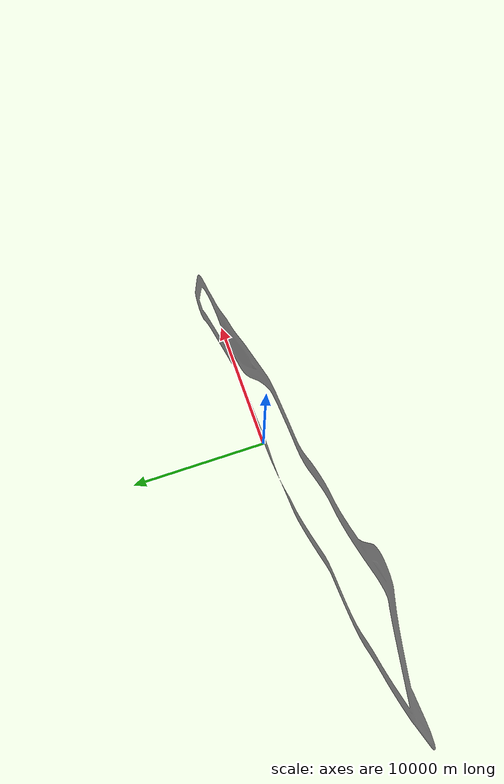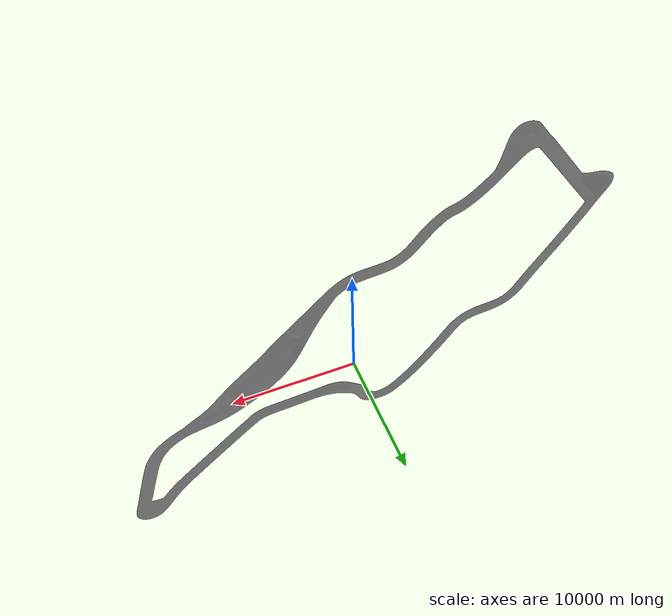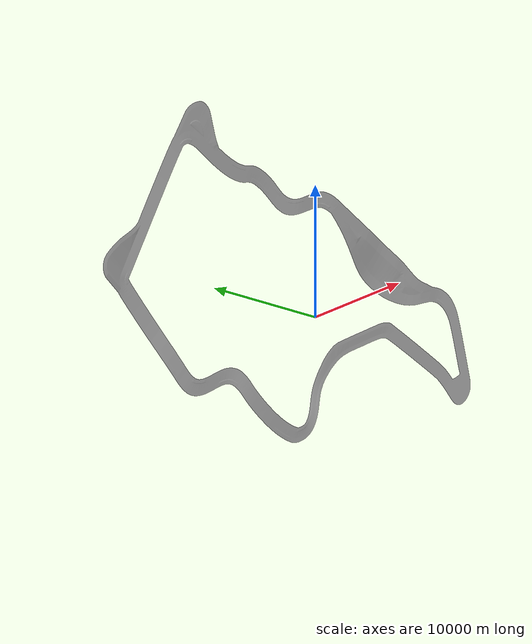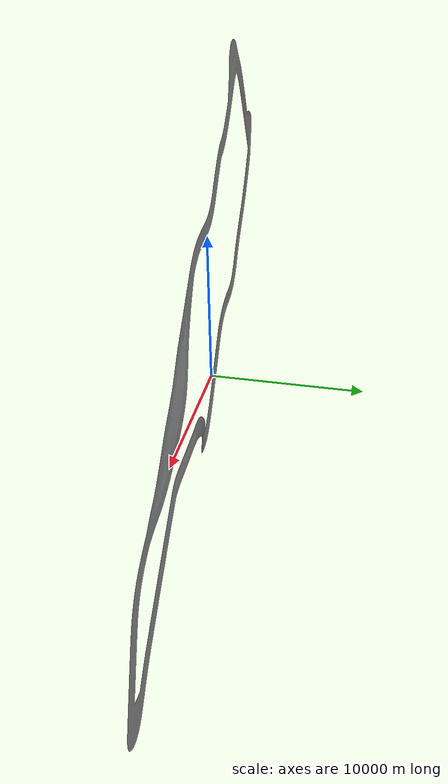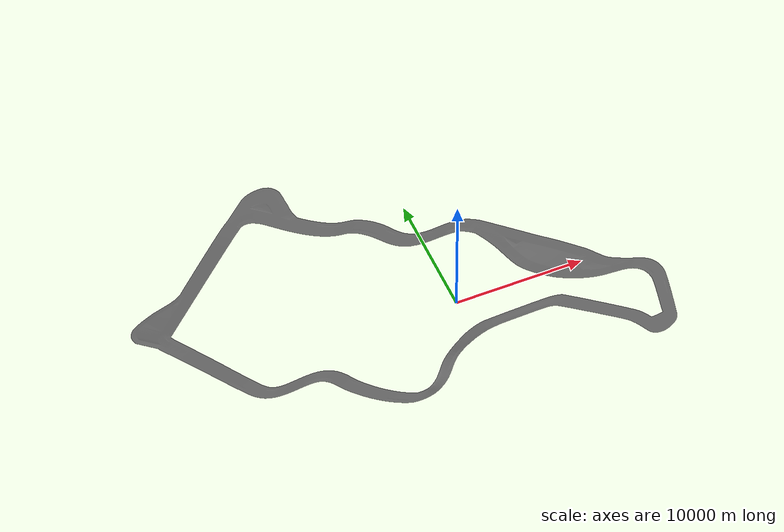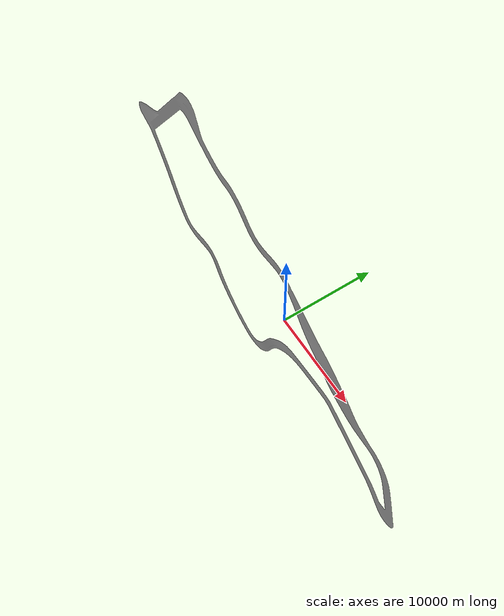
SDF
<sdf version="1.7">
 <world name="default">
  <light name="sun" type="directional">
   <pose>0 0 10 0 -0 0</pose>
   <diffuse>1.0 1.0 1.0 1.0</diffuse>
   <specular>0.2 0.2 0.2 1</specular>
   <attenuation>
    <range>10000000</range>
    <constant>0.9</constant>
    <linear>0.01</linear>
    <quadratic>0.001</quadratic>
   </attenuation>
   <direction>-0.5 0.1 -0.9</direction>
   <spot><inner_angle>0</inner_angle><outer_angle>0</outer_angle><falloff>0</falloff></spot>
  </light>
  <gravity>0 0 -9.8</gravity>
  <magnetic_field>6e-06 2.3e-05 -4.2e-05</magnetic_field>
  <atmosphere type="adiabatic"/>
  <physics type="ode">
   <max_step_size>0.001</max_step_size>
   <real_time_factor>1</real_time_factor>
   <real_time_update_rate>1000</real_time_update_rate>
  </physics>
  <scene><ambient>0.7 0.7 1</ambient><background>0.7 0.7 0.7 1</background><shadows>1</shadows></scene>
  <audio><device>default</device></audio>
  <spherical_coordinates>
   <surface_model>EARTH_WGS84</surface_model>
   <latitude_deg>40.437688</latitude_deg>
   <longitude_deg>-86.944469</longitude_deg>
   <elevation>0</elevation>
   <heading_deg>0</heading_deg>
  </spherical_coordinates>
  <model name="raceway">
   <pose>0.048157 5.94208 0 0 -0 0</pose>
   <static>1</static>
   <link name="link">
    <collision name="collision">
     <pose>0 0 0 1.5707 -0 0</pose>
     <geometry><mesh><uri>model://raceway/meshes/raceway.obj</uri></mesh></geometry>
    </collision>
    <visual name="visual">
     <pose>0 0 0 1.5707 -0 0</pose>
     <geometry><mesh><uri>model://raceway/meshes/raceway.obj</uri></mesh></geometry>
    </visual>
   </link>
  </model>
 </world>
</sdf>
